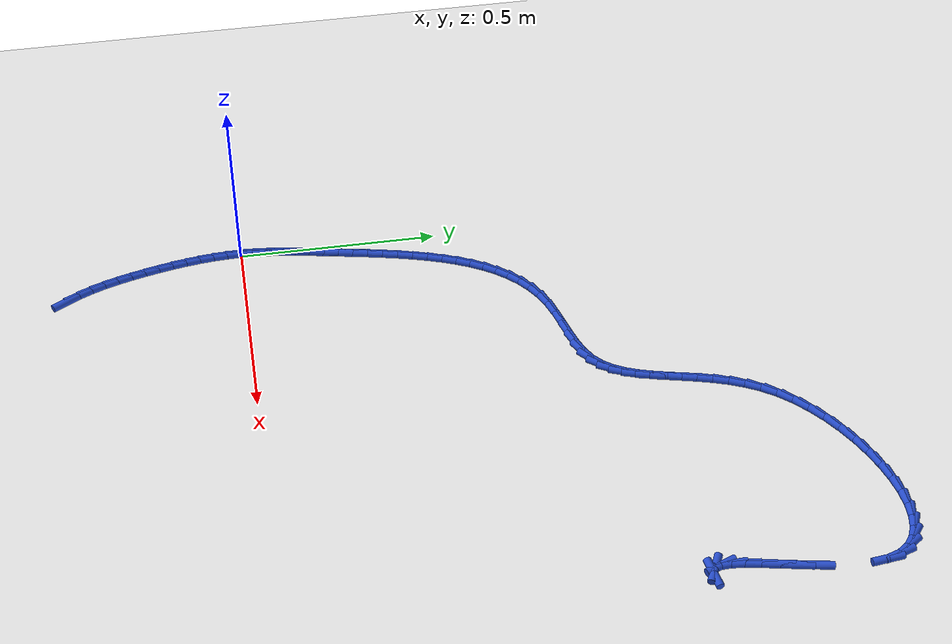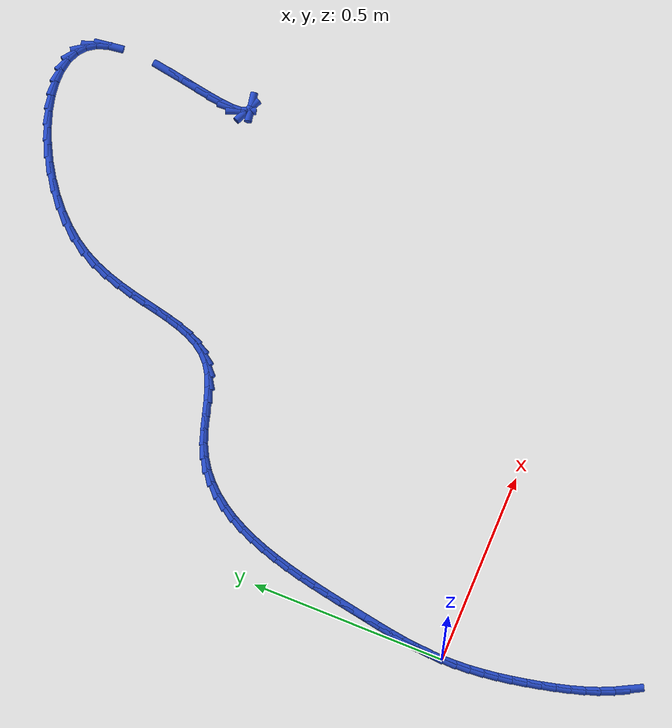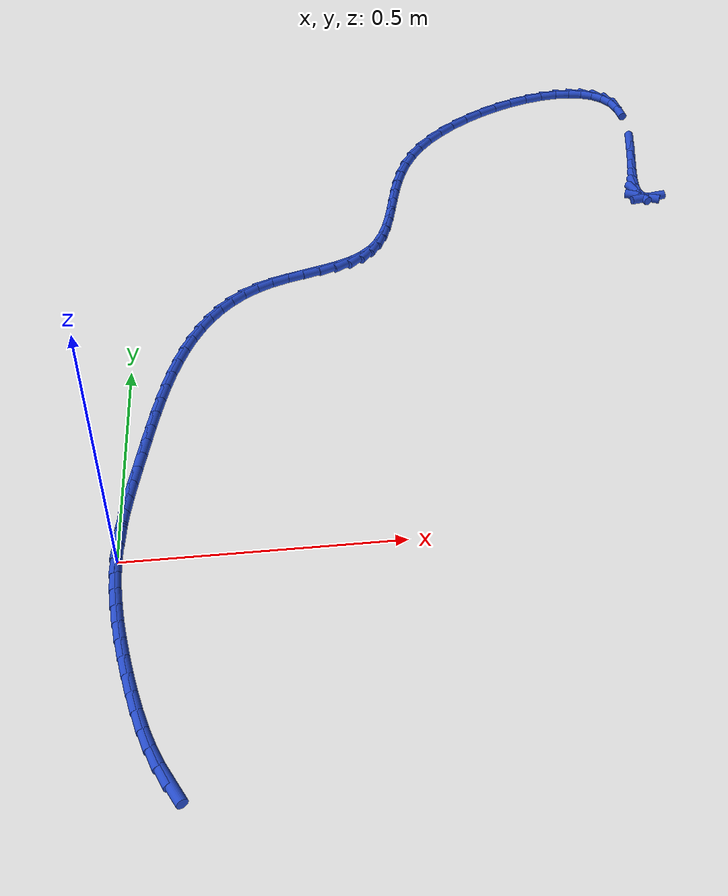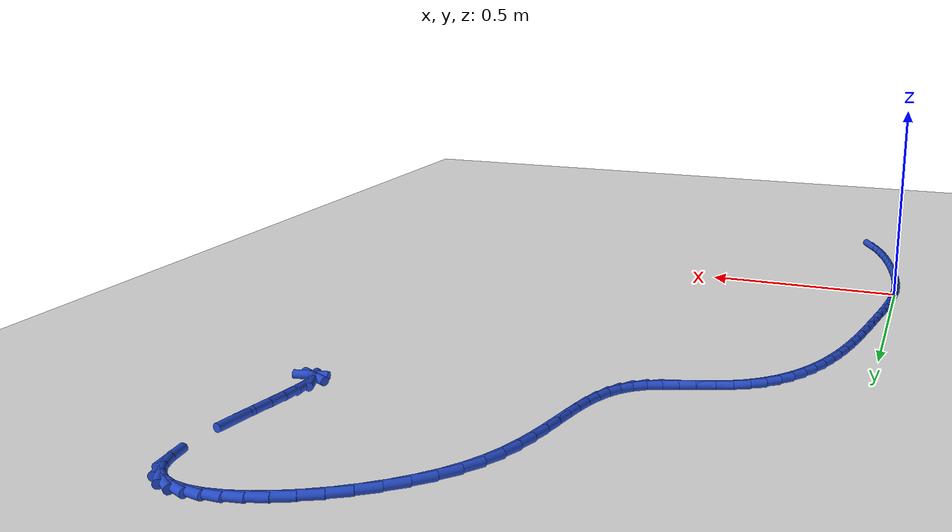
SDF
<sdf version="1.6">
 <world name="default">
  <model name="ground_plane">
   <static>1</static>
   <link name="link">
    <collision name="collision">
     <geometry><plane><normal>0 0 1</normal><size>100 100</size></plane></geometry>
     <surface><friction><ode><mu>100</mu><mu2>50</mu2></ode></friction></surface>
    </collision>
    <visual name="visual">
     <cast_shadows>0</cast_shadows>
     <geometry><plane><normal>0 0 1</normal><size>100 100</size></plane></geometry>
     <material>
      <script><uri>file://media/materials/scripts/gazebo.material</uri><name>Gazebo/WhiteGlow</name></script>
     </material>
    </visual>
   </link>
  </model>
  <model name="line">
   <link name="link_0">
    <pose>-5.204170427930421e-18 -4.85722573273506e-17 0.01 0 1.57 1.5369050462411713</pose>
    <collision name="collision">
     <geometry><cylinder><radius>0.01</radius><length>0.08</length></cylinder></geometry>
    </collision>
    <visual name="visual">
     <material>
      <script><name>Gazebo/Blue</name><uri>file://media/materials/scripts/gazebo.material</uri></script>
     </material>
     <geometry><cylinder><radius>0.01</radius><length>0.08</length></cylinder></geometry>
    </visual>
   </link>
   <link name="link_1">
    <pose>0.001179614929062979 0.03479252576305422 0.01 0 1.57 1.4944790678501276</pose>
    <collision name="collision">
     <geometry><cylinder><radius>0.01</radius><length>0.08</length></cylinder></geometry>
    </collision>
    <visual name="visual">
     <material>
      <script><name>Gazebo/Blue</name><uri>file://media/materials/scripts/gazebo.material</uri></script>
     </material>
     <geometry><cylinder><radius>0.01</radius><length>0.08</length></cylinder></geometry>
    </visual>
   </link>
   <link name="link_2">
    <pose>0.0038353056540135727 0.06952297718088313 0.01 0 1.57 1.4592045873272361</pose>
    <collision name="collision">
     <geometry><cylinder><radius>0.01</radius><length>0.08</length></cylinder></geometry>
    </collision>
    <visual name="visual">
     <material>
      <script><name>Gazebo/Blue</name><uri>file://media/materials/scripts/gazebo.material</uri></script>
     </material>
     <geometry><cylinder><radius>0.01</radius><length>0.08</length></cylinder></geometry>
    </visual>
   </link>
   <link name="link_3">
    <pose>0.007736921789207115 0.10434103318704124 0.01 0 1.57 1.4314305865625976</pose>
    <collision name="collision">
     <geometry><cylinder><radius>0.01</radius><length>0.08</length></cylinder></geometry>
    </collision>
    <visual name="visual">
     <material>
      <script><name>Gazebo/Blue</name><uri>file://media/materials/scripts/gazebo.material</uri></script>
     </material>
     <geometry><cylinder><radius>0.01</radius><length>0.08</length></cylinder></geometry>
    </visual>
   </link>
   <link name="link_4">
    <pose>0.012654312948998951 0.13939637271508315 0.01 0 1.57 1.4112540431788643</pose>
    <collision name="collision">
     <geometry><cylinder><radius>0.01</radius><length>0.08</length></cylinder></geometry>
    </collision>
    <visual name="visual">
     <material>
      <script><name>Gazebo/Blue</name><uri>file://media/materials/scripts/gazebo.material</uri></script>
     </material>
     <geometry><cylinder><radius>0.01</radius><length>0.08</length></cylinder></geometry>
    </visual>
   </link>
   <link name="link_5">
    <pose>0.018357328747744418 0.17483867469856335 0.01 0 1.57 1.3985709128711143</pose>
    <collision name="collision">
     <geometry><cylinder><radius>0.01</radius><length>0.08</length></cylinder></geometry>
    </collision>
    <visual name="visual">
     <material>
      <script><name>Gazebo/Blue</name><uri>file://media/materials/scripts/gazebo.material</uri></script>
     </material>
     <geometry><cylinder><radius>0.01</radius><length>0.08</length></cylinder></geometry>
    </visual>
   </link>
   <link name="link_6">
    <pose>0.02461581879979885 0.21081761807103636 0.01 0 1.57 1.3931243501759252</pose>
    <collision name="collision">
     <geometry><cylinder><radius>0.01</radius><length>0.08</length></cylinder></geometry>
    </collision>
    <visual name="visual">
     <material>
      <script><name>Gazebo/Blue</name><uri>file://media/materials/scripts/gazebo.material</uri></script>
     </material>
     <geometry><cylinder><radius>0.01</radius><length>0.08</length></cylinder></geometry>
    </visual>
   </link>
   <link name="link_7">
    <pose>0.031199632719517586 0.2474828817660568 0.01 0 1.57 1.3925732620197482</pose>
    <collision name="collision">
     <geometry><cylinder><radius>0.01</radius><length>0.08</length></cylinder></geometry>
    </collision>
    <visual name="visual">
     <material>
      <script><name>Gazebo/Blue</name><uri>file://media/materials/scripts/gazebo.material</uri></script>
     </material>
     <geometry><cylinder><radius>0.01</radius><length>0.08</length></cylinder></geometry>
    </visual>
   </link>
   <link name="link_8">
    <pose>0.03794316011798658 0.28491898185479275 0.01 0 1.57 1.388079590155113</pose>
    <collision name="collision">
     <geometry><cylinder><radius>0.01</radius><length>0.08</length></cylinder></geometry>
    </collision>
    <visual name="visual">
     <material>
      <script><name>Gazebo/Blue</name><uri>file://media/materials/scripts/gazebo.material</uri></script>
     </material>
     <geometry><cylinder><radius>0.01</radius><length>0.08</length></cylinder></geometry>
    </visual>
   </link>
   <link name="link_9">
    <pose>0.0449654561309157 0.3229230216202673 0.01 0 1.57 1.3774066742535753</pose>
    <collision name="collision">
     <geometry><cylinder><radius>0.01</radius><length>0.08</length></cylinder></geometry>
    </collision>
    <visual name="visual">
     <material>
      <script><name>Gazebo/Blue</name><uri>file://media/materials/scripts/gazebo.material</uri></script>
     </material>
     <geometry><cylinder><radius>0.01</radius><length>0.08</length></cylinder></geometry>
    </visual>
   </link>
   <link name="link_10">
    <pose>0.052464035154047295 0.36121288788712996 0.01 0 1.57 1.3605367504029735</pose>
    <collision name="collision">
     <geometry><cylinder><radius>0.01</radius><length>0.08</length></cylinder></geometry>
    </collision>
    <visual name="visual">
     <material>
      <script><name>Gazebo/Blue</name><uri>file://media/materials/scripts/gazebo.material</uri></script>
     </material>
     <geometry><cylinder><radius>0.01</radius><length>0.08</length></cylinder></geometry>
    </visual>
   </link>
   <link name="link_11">
    <pose>0.06063641404318535 0.3995064649962271 0.01 0 1.57 1.3372407531217283</pose>
    <collision name="collision">
     <geometry><cylinder><radius>0.01</radius><length>0.08</length></cylinder></geometry>
    </collision>
    <visual name="visual">
     <material>
      <script><name>Gazebo/Blue</name><uri>file://media/materials/scripts/gazebo.material</uri></script>
     </material>
     <geometry><cylinder><radius>0.01</radius><length>0.08</length></cylinder></geometry>
    </visual>
   </link>
   <link name="link_12">
    <pose>0.06968010965413389 0.43752163728840493 0.01 0 1.57 1.3070901362691616</pose>
    <collision name="collision">
     <geometry><cylinder><radius>0.01</radius><length>0.08</length></cylinder></geometry>
    </collision>
    <visual name="visual">
     <material>
      <script><name>Gazebo/Blue</name><uri>file://media/materials/scripts/gazebo.material</uri></script>
     </material>
     <geometry><cylinder><radius>0.01</radius><length>0.08</length></cylinder></geometry>
    </visual>
   </link>
   <link name="link_13">
    <pose>0.07979263884269686 0.47497628910450973 0.01 0 1.57 1.2694643203815754</pose>
    <collision name="collision">
     <geometry><cylinder><radius>0.01</radius><length>0.08</length></cylinder></geometry>
    </collision>
    <visual name="visual">
     <material>
      <script><name>Gazebo/Blue</name><uri>file://media/materials/scripts/gazebo.material</uri></script>
     </material>
     <geometry><cylinder><radius>0.01</radius><length>0.08</length></cylinder></geometry>
    </visual>
   </link>
   <link name="link_14">
    <pose>0.09117151846467822 0.5115883047853877 0.01 0 1.57 1.2235620936816765</pose>
    <collision name="collision">
     <geometry><cylinder><radius>0.01</radius><length>0.08</length></cylinder></geometry>
    </collision>
    <visual name="visual">
     <material>
      <script><name>Gazebo/Blue</name><uri>file://media/materials/scripts/gazebo.material</uri></script>
     </material>
     <geometry><cylinder><radius>0.01</radius><length>0.08</length></cylinder></geometry>
    </visual>
   </link>
   <link name="link_15">
    <pose>0.10401426537588201 0.5470755686718852 0.01 0 1.57 1.1684296489621728</pose>
    <collision name="collision">
     <geometry><cylinder><radius>0.01</radius><length>0.08</length></cylinder></geometry>
    </collision>
    <visual name="visual">
     <material>
      <script><name>Gazebo/Blue</name><uri>file://media/materials/scripts/gazebo.material</uri></script>
     </material>
     <geometry><cylinder><radius>0.01</radius><length>0.08</length></cylinder></geometry>
    </visual>
   </link>
   <link name="link_16">
    <pose>0.1185183964321122 0.5811559651048483 0.01 0 1.57 1.1030246761978932</pose>
    <collision name="collision">
     <geometry><cylinder><radius>0.01</radius><length>0.08</length></cylinder></geometry>
    </collision>
    <visual name="visual">
     <material>
      <script><name>Gazebo/Blue</name><uri>file://media/materials/scripts/gazebo.material</uri></script>
     </material>
     <geometry><cylinder><radius>0.01</radius><length>0.08</length></cylinder></geometry>
    </visual>
   </link>
   <link name="link_17">
    <pose>0.1348814284891728 0.6135473784251237 0.01 0 1.57 1.0263437357575256</pose>
    <collision name="collision">
     <geometry><cylinder><radius>0.01</radius><length>0.08</length></cylinder></geometry>
    </collision>
    <visual name="visual">
     <material>
      <script><name>Gazebo/Blue</name><uri>file://media/materials/scripts/gazebo.material</uri></script>
     </material>
     <geometry><cylinder><radius>0.01</radius><length>0.08</length></cylinder></geometry>
    </visual>
   </link>
   <link name="link_18">
    <pose>0.1533008784028677 0.643967692973557 0.01 0 1.57 0.9376433334057122</pose>
    <collision name="collision">
     <geometry><cylinder><radius>0.01</radius><length>0.08</length></cylinder></geometry>
    </collision>
    <visual name="visual">
     <material>
      <script><name>Gazebo/Blue</name><uri>file://media/materials/scripts/gazebo.material</uri></script>
     </material>
     <geometry><cylinder><radius>0.01</radius><length>0.08</length></cylinder></geometry>
    </visual>
   </link>
   <link name="link_19">
    <pose>0.173974263029001 0.6721347930909952 0.01 0 1.57 0.8367702398681535</pose>
    <collision name="collision">
     <geometry><cylinder><radius>0.01</radius><length>0.08</length></cylinder></geometry>
    </collision>
    <visual name="visual">
     <material>
      <script><name>Gazebo/Blue</name><uri>file://media/materials/scripts/gazebo.material</uri></script>
     </material>
     <geometry><cylinder><radius>0.01</radius><length>0.08</length></cylinder></geometry>
    </visual>
   </link>
   <link name="link_20">
    <pose>0.19709909922337657 0.6977665631182838 0.01 0 1.57 0.7245637853239802</pose>
    <collision name="collision">
     <geometry><cylinder><radius>0.01</radius><length>0.08</length></cylinder></geometry>
    </collision>
    <visual name="visual">
     <material>
      <script><name>Gazebo/Blue</name><uri>file://media/materials/scripts/gazebo.material</uri></script>
     </material>
     <geometry><cylinder><radius>0.01</radius><length>0.08</length></cylinder></geometry>
    </visual>
   </link>
   <link name="link_21">
    <pose>0.2228729038417985 0.7205808873962697 0.01 0 1.57 0.6031958058943186</pose>
    <collision name="collision">
     <geometry><cylinder><radius>0.01</radius><length>0.08</length></cylinder></geometry>
    </collision>
    <visual name="visual">
     <material>
      <script><name>Gazebo/Blue</name><uri>file://media/materials/scripts/gazebo.material</uri></script>
     </material>
     <geometry><cylinder><radius>0.01</radius><length>0.08</length></cylinder></geometry>
    </visual>
   </link>
   <link name="link_22">
    <pose>0.25149319374007073 0.7402956502657989 0.01 0 1.57 0.4764705233320054</pose>
    <collision name="collision">
     <geometry><cylinder><radius>0.01</radius><length>0.08</length></cylinder></geometry>
    </collision>
    <visual name="visual">
     <material>
      <script><name>Gazebo/Blue</name><uri>file://media/materials/scripts/gazebo.material</uri></script>
     </material>
     <geometry><cylinder><radius>0.01</radius><length>0.08</length></cylinder></geometry>
    </visual>
   </link>
   <link name="link_23">
    <pose>0.28315084577020794 0.7566352080083728 0.01 0 1.57 0.36785588193311014</pose>
    <collision name="collision">
     <geometry><cylinder><radius>0.01</radius><length>0.08</length></cylinder></geometry>
    </collision>
    <visual name="visual">
     <material>
      <script><name>Gazebo/Blue</name><uri>file://media/materials/scripts/gazebo.material</uri></script>
     </material>
     <geometry><cylinder><radius>0.01</radius><length>0.08</length></cylinder></geometry>
    </visual>
   </link>
   <link name="link_24">
    <pose>0.3174806974591322 0.7698658824868287 0.01 0 1.57 0.3075824316335672</pose>
    <collision name="collision">
     <geometry><cylinder><radius>0.01</radius><length>0.08</length></cylinder></geometry>
    </collision>
    <visual name="visual">
     <material>
      <script><name>Gazebo/Blue</name><uri>file://media/materials/scripts/gazebo.material</uri></script>
     </material>
     <geometry><cylinder><radius>0.01</radius><length>0.08</length></cylinder></geometry>
    </visual>
   </link>
   <link name="link_25">
    <pose>0.3531502772942382 0.7811968213360009 0.01 0 1.57 0.29302371395674015</pose>
    <collision name="collision">
     <geometry><cylinder><radius>0.01</radius><length>0.08</length></cylinder></geometry>
    </collision>
    <visual name="visual">
     <material>
      <script><name>Gazebo/Blue</name><uri>file://media/materials/scripts/gazebo.material</uri></script>
     </material>
     <geometry><cylinder><radius>0.01</radius><length>0.08</length></cylinder></geometry>
    </visual>
   </link>
   <link name="link_26">
    <pose>0.3887302295905153 0.7919316041570427 0.01 0 1.57 0.32408850256056776</pose>
    <collision name="collision">
     <geometry><cylinder><radius>0.01</radius><length>0.08</length></cylinder></geometry>
    </collision>
    <visual name="visual">
     <material>
      <script><name>Gazebo/Blue</name><uri>file://media/materials/scripts/gazebo.material</uri></script>
     </material>
     <geometry><cylinder><radius>0.01</radius><length>0.08</length></cylinder></geometry>
    </visual>
   </link>
   <link name="link_27">
    <pose>0.42279119866295295 0.803373810551108 0.01 0 1.57 0.40812471255408317</pose>
    <collision name="collision">
     <geometry><cylinder><radius>0.01</radius><length>0.08</length></cylinder></geometry>
    </collision>
    <visual name="visual">
     <material>
      <script><name>Gazebo/Blue</name><uri>file://media/materials/scripts/gazebo.material</uri></script>
     </material>
     <geometry><cylinder><radius>0.01</radius><length>0.08</length></cylinder></geometry>
    </visual>
   </link>
   <link name="link_28">
    <pose>0.45390382882654096 0.8168270201193508 0.01 0 1.57 0.5597559717216742</pose>
    <collision name="collision">
     <geometry><cylinder><radius>0.01</radius><length>0.08</length></cylinder></geometry>
    </collision>
    <visual name="visual">
     <material>
      <script><name>Gazebo/Blue</name><uri>file://media/materials/scripts/gazebo.material</uri></script>
     </material>
     <geometry><cylinder><radius>0.01</radius><length>0.08</length></cylinder></geometry>
    </visual>
   </link>
   <link name="link_29">
    <pose>0.4806497685451893 0.8335862837677136 0.01 0 1.57 0.7617756545515256</pose>
    <collision name="collision">
     <geometry><cylinder><radius>0.01</radius><length>0.08</length></cylinder></geometry>
    </collision>
    <visual name="visual">
     <material>
      <script><name>Gazebo/Blue</name><uri>file://media/materials/scripts/gazebo.material</uri></script>
     </material>
     <geometry><cylinder><radius>0.01</radius><length>0.08</length></cylinder></geometry>
    </visual>
   </link>
   <link name="link_30">
    <pose>0.5024014041411227 0.8543337960845812 0.01 0 1.57 0.9504129710283877</pose>
    <collision name="collision">
     <geometry><cylinder><radius>0.01</radius><length>0.08</length></cylinder></geometry>
    </collision>
    <visual name="visual">
     <material>
      <script><name>Gazebo/Blue</name><uri>file://media/materials/scripts/gazebo.material</uri></script>
     </material>
     <geometry><cylinder><radius>0.01</radius><length>0.08</length></cylinder></geometry>
    </visual>
   </link>
   <link name="link_31">
    <pose>0.5198383411708368 0.8787385997550478 0.01 0 1.57 1.104075658613848</pose>
    <collision name="collision">
     <geometry><cylinder><radius>0.01</radius><length>0.08</length></cylinder></geometry>
    </collision>
    <visual name="visual">
     <material>
      <script><name>Gazebo/Blue</name><uri>file://media/materials/scripts/gazebo.material</uri></script>
     </material>
     <geometry><cylinder><radius>0.01</radius><length>0.08</length></cylinder></geometry>
    </visual>
   </link>
   <link name="link_32">
    <pose>0.5337627403474583 0.9063747518742298 0.01 0 1.57 1.2178432131364294</pose>
    <collision name="collision">
     <geometry><cylinder><radius>0.01</radius><length>0.08</length></cylinder></geometry>
    </collision>
    <visual name="visual">
     <material>
      <script><name>Gazebo/Blue</name><uri>file://media/materials/scripts/gazebo.material</uri></script>
     </material>
     <geometry><cylinder><radius>0.01</radius><length>0.08</length></cylinder></geometry>
    </visual>
   </link>
   <link name="link_33">
    <pose>0.5449767623841129 0.9368163095372418 0.01 0 1.57 1.2945155241710844</pose>
    <collision name="collision">
     <geometry><cylinder><radius>0.01</radius><length>0.08</length></cylinder></geometry>
    </collision>
    <visual name="visual">
     <material>
      <script><name>Gazebo/Blue</name><uri>file://media/materials/scripts/gazebo.material</uri></script>
     </material>
     <geometry><cylinder><radius>0.01</radius><length>0.08</length></cylinder></geometry>
    </visual>
   </link>
   <link name="link_34">
    <pose>0.554282567993927 0.9696373298392008 0.01 0 1.57 1.339228729796562</pose>
    <collision name="collision">
     <geometry><cylinder><radius>0.01</radius><length>0.08</length></cylinder></geometry>
    </collision>
    <visual name="visual">
     <material>
      <script><name>Gazebo/Blue</name><uri>file://media/materials/scripts/gazebo.material</uri></script>
     </material>
     <geometry><cylinder><radius>0.01</radius><length>0.08</length></cylinder></geometry>
    </visual>
   </link>
   <link name="link_35">
    <pose>0.5624823178900267 1.0044118698752216 0.01 0 1.57 1.3566280548710765</pose>
    <collision name="collision">
     <geometry><cylinder><radius>0.01</radius><length>0.08</length></cylinder></geometry>
    </collision>
    <visual name="visual">
     <material>
      <script><name>Gazebo/Blue</name><uri>file://media/materials/scripts/gazebo.material</uri></script>
     </material>
     <geometry><cylinder><radius>0.01</radius><length>0.08</length></cylinder></geometry>
    </visual>
   </link>
   <link name="link_36">
    <pose>0.5703781727855383 1.0407139867404205 0.01 0 1.57 1.3500347471364218</pose>
    <collision name="collision">
     <geometry><cylinder><radius>0.01</radius><length>0.08</length></cylinder></geometry>
    </collision>
    <visual name="visual">
     <material>
      <script><name>Gazebo/Blue</name><uri>file://media/materials/scripts/gazebo.material</uri></script>
     </material>
     <geometry><cylinder><radius>0.01</radius><length>0.08</length></cylinder></geometry>
    </visual>
   </link>
   <link name="link_37">
    <pose>0.5787722933935876 1.0781177375299127 0.01 0 1.57 1.3215047693264759</pose>
    <collision name="collision">
     <geometry><cylinder><radius>0.01</radius><length>0.08</length></cylinder></geometry>
    </collision>
    <visual name="visual">
     <material>
      <script><name>Gazebo/Blue</name><uri>file://media/materials/scripts/gazebo.material</uri></script>
     </material>
     <geometry><cylinder><radius>0.01</radius><length>0.08</length></cylinder></geometry>
    </visual>
   </link>
   <link name="link_38">
    <pose>0.5884668404273015 1.1161971793388146 0.01 0 1.57 1.2722130922830535</pose>
    <collision name="collision">
     <geometry><cylinder><radius>0.01</radius><length>0.08</length></cylinder></geometry>
    </collision>
    <visual name="visual">
     <material>
      <script><name>Gazebo/Blue</name><uri>file://media/materials/scripts/gazebo.material</uri></script>
     </material>
     <geometry><cylinder><radius>0.01</radius><length>0.08</length></cylinder></geometry>
    </visual>
   </link>
   <link name="link_39">
    <pose>0.6002639745998056 1.1545263692622418 0.01 0 1.57 1.2029912521550543</pose>
    <collision name="collision">
     <geometry><cylinder><radius>0.01</radius><length>0.08</length></cylinder></geometry>
    </collision>
    <visual name="visual">
     <material>
      <script><name>Gazebo/Blue</name><uri>file://media/materials/scripts/gazebo.material</uri></script>
     </material>
     <geometry><cylinder><radius>0.01</radius><length>0.08</length></cylinder></geometry>
    </visual>
   </link>
   <link name="link_40">
    <pose>0.6149658566242262 1.1926793643953097 0.01 0 1.57 1.1149902028308967</pose>
    <collision name="collision">
     <geometry><cylinder><radius>0.01</radius><length>0.08</length></cylinder></geometry>
    </collision>
    <visual name="visual">
     <material>
      <script><name>Gazebo/Blue</name><uri>file://media/materials/scripts/gazebo.material</uri></script>
     </material>
     <geometry><cylinder><radius>0.01</radius><length>0.08</length></cylinder></geometry>
    </visual>
   </link>
   <link name="link_41">
    <pose>0.6333746472136897 1.2302302218331345 0.01 0 1.57 1.0104270688908756</pose>
    <collision name="collision">
     <geometry><cylinder><radius>0.01</radius><length>0.08</length></cylinder></geometry>
    </collision>
    <visual name="visual">
     <material>
      <script><name>Gazebo/Blue</name><uri>file://media/materials/scripts/gazebo.material</uri></script>
     </material>
     <geometry><cylinder><radius>0.01</radius><length>0.08</length></cylinder></geometry>
    </visual>
   </link>
   <link name="link_42">
    <pose>0.6562914018405819 1.2667530384862449 0.01 0 1.57 0.9004035265437024</pose>
    <collision name="collision">
     <geometry><cylinder><radius>0.01</radius><length>0.08</length></cylinder></geometry>
    </collision>
    <visual name="visual">
     <material>
      <script><name>Gazebo/Blue</name><uri>file://media/materials/scripts/gazebo.material</uri></script>
     </material>
     <geometry><cylinder><radius>0.01</radius><length>0.08</length></cylinder></geometry>
    </visual>
   </link>
   <link name="link_43">
    <pose>0.6841089511659812 1.3018366172374258 0.01 0 1.57 0.8033685839622964</pose>
    <collision name="collision">
     <geometry><cylinder><radius>0.01</radius><length>0.08</length></cylinder></geometry>
    </collision>
    <visual name="visual">
     <material>
      <script><name>Gazebo/Blue</name><uri>file://media/materials/scripts/gazebo.material</uri></script>
     </material>
     <geometry><cylinder><radius>0.01</radius><length>0.08</length></cylinder></geometry>
    </visual>
   </link>
   <link name="link_44">
    <pose>0.7162039436599458 1.3351063681199664 0.01 0 1.57 0.7179146089818566</pose>
    <collision name="collision">
     <geometry><cylinder><radius>0.01</radius><length>0.08</length></cylinder></geometry>
    </collision>
    <visual name="visual">
     <material>
      <script><name>Gazebo/Blue</name><uri>file://media/materials/scripts/gazebo.material</uri></script>
     </material>
     <geometry><cylinder><radius>0.01</radius><length>0.08</length></cylinder></geometry>
    </visual>
   </link>
   <link name="link_45">
    <pose>0.7517975611359362 1.3661933017290904 0.01 0 1.57 0.6401528496057675</pose>
    <collision name="collision">
     <geometry><cylinder><radius>0.01</radius><length>0.08</length></cylinder></geometry>
    </collision>
    <visual name="visual">
     <material>
      <script><name>Gazebo/Blue</name><uri>file://media/materials/scripts/gazebo.material</uri></script>
     </material>
     <geometry><cylinder><radius>0.01</radius><length>0.08</length></cylinder></geometry>
    </visual>
   </link>
   <link name="link_46">
    <pose>0.7901109854074131 1.3947284286600203 0.01 0 1.57 0.5666918426993591</pose>
    <collision name="collision">
     <geometry><cylinder><radius>0.01</radius><length>0.08</length></cylinder></geometry>
    </collision>
    <visual name="visual">
     <material>
      <script><name>Gazebo/Blue</name><uri>file://media/materials/scripts/gazebo.material</uri></script>
     </material>
     <geometry><cylinder><radius>0.01</radius><length>0.08</length></cylinder></geometry>
    </visual>
   </link>
   <link name="link_47">
    <pose>0.8303653982878372 1.4203427595079796 0.01 0 1.57 0.49437754574316994</pose>
    <collision name="collision">
     <geometry><cylinder><radius>0.01</radius><length>0.08</length></cylinder></geometry>
    </collision>
    <visual name="visual">
     <material>
      <script><name>Gazebo/Blue</name><uri>file://media/materials/scripts/gazebo.material</uri></script>
     </material>
     <geometry><cylinder><radius>0.01</radius><length>0.08</length></cylinder></geometry>
    </visual>
   </link>
   <link name="link_48">
    <pose>0.871781981590669 1.4426673048681917 0.01 0 1.57 0.41998138685529285</pose>
    <collision name="collision">
     <geometry><cylinder><radius>0.01</radius><length>0.08</length></cylinder></geometry>
    </collision>
    <visual name="visual">
     <material>
      <script><name>Gazebo/Blue</name><uri>file://media/materials/scripts/gazebo.material</uri></script>
     </material>
     <geometry><cylinder><radius>0.01</radius><length>0.08</length></cylinder></geometry>
    </visual>
   </link>
   <link name="link_49">
    <pose>0.9135819171293686 1.4613330753358784 0.01 0 1.57 0.33982221556580244</pose>
    <collision name="collision">
     <geometry><cylinder><radius>0.01</radius><length>0.08</length></cylinder></geometry>
    </collision>
    <visual name="visual">
     <material>
      <script><name>Gazebo/Blue</name><uri>file://media/materials/scripts/gazebo.material</uri></script>
     </material>
     <geometry><cylinder><radius>0.01</radius><length>0.08</length></cylinder></geometry>
    </visual>
   </link>
   <link name="link_50">
    <pose>0.9549863867173972 1.475971081506264 0.01 0 1.57 0.24927178854312962</pose>
    <collision name="collision">
     <geometry><cylinder><radius>0.01</radius><length>0.08</length></cylinder></geometry>
    </collision>
    <visual name="visual">
     <material>
      <script><name>Gazebo/Blue</name><uri>file://media/materials/scripts/gazebo.material</uri></script>
     </material>
     <geometry><cylinder><radius>0.01</radius><length>0.08</length></cylinder></geometry>
    </visual>
   </link>
   <link name="link_51">
    <pose>0.995216572168215 1.486212333974571 0.01 0 1.57 0.14208534853576427</pose>
    <collision name="collision">
     <geometry><cylinder><radius>0.01</radius><length>0.08</length></cylinder></geometry>
    </collision>
    <visual name="visual">
     <material>
      <script><name>Gazebo/Blue</name><uri>file://media/materials/scripts/gazebo.material</uri></script>
     </material>
     <geometry><cylinder><radius>0.01</radius><length>0.08</length></cylinder></geometry>
    </visual>
   </link>
   <link name="link_52">
    <pose>1.0334936552952834 1.4916878433360234 0.01 0 1.57 0.00958685752569644</pose>
    <collision name="collision">
     <geometry><cylinder><radius>0.01</radius><length>0.08</length></cylinder></geometry>
    </collision>
    <visual name="visual">
     <material>
      <script><name>Gazebo/Blue</name><uri>file://media/materials/scripts/gazebo.material</uri></script>
     </material>
     <geometry><cylinder><radius>0.01</radius><length>0.08</length></cylinder></geometry>
    </visual>
   </link>
   <link name="link_53">
    <pose>1.0690388179120616 1.4920286201858433 0.01 0 1.57 -0.15979453970036117</pose>
    <collision name="collision">
     <geometry><cylinder><radius>0.01</radius><length>0.08</length></cylinder></geometry>
    </collision>
    <visual name="visual">
     <material>
      <script><name>Gazebo/Blue</name><uri>file://media/materials/scripts/gazebo.material</uri></script>
     </material>
     <geometry><cylinder><radius>0.01</radius><length>0.08</length></cylinder></geometry>
    </visual>
   </link>
   <link name="link_54">
    <pose>1.1010732418320113 1.4868656751192542 0.01 0 1.57 -0.3785694357290226</pose>
    <collision name="collision">
     <geometry><cylinder><radius>0.01</radius><length>0.08</length></cylinder></geometry>
    </collision>
    <visual name="visual">
     <material>
      <script><name>Gazebo/Blue</name><uri>file://media/materials/scripts/gazebo.material</uri></script>
     </material>
     <geometry><cylinder><radius>0.01</radius><length>0.08</length></cylinder></geometry>
    </visual>
   </link>
   <link name="link_55">
    <pose>1.1288181088685927 1.4758300187314792 0.01 0 1.57 -0.6510775557322538</pose>
    <collision name="collision">
     <geometry><cylinder><radius>0.01</radius><length>0.08</length></cylinder></geometry>
    </collision>
    <visual name="visual">
     <material>
      <script><name>Gazebo/Blue</name><uri>file://media/materials/scripts/gazebo.material</uri></script>
     </material>
     <geometry><cylinder><radius>0.01</radius><length>0.08</length></cylinder></geometry>
    </visual>
   </link>
   <link name="link_56">
    <pose>1.1514946008352664 1.4585526616177409 0.01 0 1.57 -0.9570518687198416</pose>
    <collision name="collision">
     <geometry><cylinder><radius>0.01</radius><length>0.08</length></cylinder></geometry>
    </collision>
    <visual name="visual">
     <material>
      <script><name>Gazebo/Blue</name><uri>file://media/materials/scripts/gazebo.material</uri></script>
     </material>
     <geometry><cylinder><radius>0.01</radius><length>0.08</length></cylinder></geometry>
    </visual>
   </link>
   <link name="link_57">
    <pose>1.1683238995454932 1.4346646143732629 0.01 0 1.57 -1.2436300506748685</pose>
    <collision name="collision">
     <geometry><cylinder><radius>0.01</radius><length>0.08</length></cylinder></geometry>
    </collision>
    <visual name="visual">
     <material>
      <script><name>Gazebo/Blue</name><uri>file://media/materials/scripts/gazebo.material</uri></script>
     </material>
     <geometry><cylinder><radius>0.01</radius><length>0.08</length></cylinder></geometry>
    </visual>
   </link>
   <link name="link_58">
    <pose>1.1787318026879587 1.4039955618378783 0.01 0 1.57 -1.444637079950514</pose>
    <collision name="collision">
     <geometry><cylinder><radius>0.01</radius><length>0.08</length></cylinder></geometry>
    </collision>
    <visual name="visual">
     <material>
      <script><name>Gazebo/Blue</name><uri>file://media/materials/scripts/gazebo.material</uri></script>
     </material>
     <geometry><cylinder><radius>0.01</radius><length>0.08</length></cylinder></geometry>
    </visual>
   </link>
   <link name="link_62">
    <pose>1.1733041422020754 1.237910113747317 0.01 0 1.57 1.4015541714508555</pose>
    <collision name="collision">
     <geometry><cylinder><radius>0.01</radius><length>0.08</length></cylinder></geometry>
    </collision>
    <visual name="visual">
     <material>
      <script><name>Gazebo/Blue</name><uri>file://media/materials/scripts/gazebo.material</uri></script>
     </material>
     <geometry><cylinder><radius>0.01</radius><length>0.08</length></cylinder></geometry>
    </visual>
   </link>
   <link name="link_63">
    <pose>1.165581281486497 1.1927146099737485 0.01 0 1.57 1.3876967503209767</pose>
    <collision name="collision">
     <geometry><cylinder><radius>0.01</radius><length>0.08</length></cylinder></geometry>
    </collision>
    <visual name="visual">
     <material>
      <script><name>Gazebo/Blue</name><uri>file://media/materials/scripts/gazebo.material</uri></script>
     </material>
     <geometry><cylinder><radius>0.01</radius><length>0.08</length></cylinder></geometry>
    </visual>
   </link>
   <link name="link_64">
    <pose>1.157471858350418 1.1489209755976948 0.01 0 1.57 1.3916630397164247</pose>
    <collision name="collision">
     <geometry><cylinder><radius>0.01</radius><length>0.08</length></cylinder></geometry>
    </collision>
    <visual name="visual">
     <material>
      <script><name>Gazebo/Blue</name><uri>file://media/materials/scripts/gazebo.material</uri></script>
     </material>
     <geometry><cylinder><radius>0.01</radius><length>0.08</length></cylinder></geometry>
    </visual>
   </link>
   <link name="link_65">
    <pose>1.1500557807024114 1.1079649736680994 0.01 0 1.57 1.4181644058250906</pose>
    <collision name="collision">
     <geometry><cylinder><radius>0.01</radius><length>0.08</length></cylinder></geometry>
    </collision>
    <visual name="visual">
     <material>
      <script><name>Gazebo/Blue</name><uri>file://media/materials/scripts/gazebo.material</uri></script>
     </material>
     <geometry><cylinder><radius>0.01</radius><length>0.08</length></cylinder></geometry>
    </visual>
   </link>
   <link name="link_66">
    <pose>1.1444129564510483 1.071282367233905 0.01 0 1.57 1.4809724146458034</pose>
    <collision name="collision">
     <geometry><cylinder><radius>0.01</radius><length>0.08</length></cylinder></geometry>
    </collision>
    <visual name="visual">
     <material>
      <script><name>Gazebo/Blue</name><uri>file://media/materials/scripts/gazebo.material</uri></script>
     </material>
     <geometry><cylinder><radius>0.01</radius><length>0.08</length></cylinder></geometry>
    </visual>
   </link>
   <link name="link_67">
    <pose>1.1416232935048996 1.0403089193440542 0.01 0 1.57 -1.522848338526374</pose>
    <collision name="collision">
     <geometry><cylinder><radius>0.01</radius><length>0.08</length></cylinder></geometry>
    </collision>
    <visual name="visual">
     <material>
      <script><name>Gazebo/Blue</name><uri>file://media/materials/scripts/gazebo.material</uri></script>
     </material>
     <geometry><cylinder><radius>0.01</radius><length>0.08</length></cylinder></geometry>
    </visual>
   </link>
   <link name="link_68">
    <pose>1.142766699772538 1.0164803930474915 0.01 0 1.57 -1.1870575808474761</pose>
    <collision name="collision">
     <geometry><cylinder><radius>0.01</radius><length>0.08</length></cylinder></geometry>
    </collision>
    <visual name="visual">
     <material>
      <script><name>Gazebo/Blue</name><uri>file://media/materials/scripts/gazebo.material</uri></script>
     </material>
     <geometry><cylinder><radius>0.01</radius><length>0.08</length></cylinder></geometry>
    </visual>
   </link>
   <link name="link_69">
    <pose>1.1489230831625346 1.0012325513931586 0.01 0 1.57 -0.42190029770812376</pose>
    <collision name="collision">
     <geometry><cylinder><radius>0.01</radius><length>0.08</length></cylinder></geometry>
    </collision>
    <visual name="visual">
     <material>
      <script><name>Gazebo/Blue</name><uri>file://media/materials/scripts/gazebo.material</uri></script>
     </material>
     <geometry><cylinder><radius>0.01</radius><length>0.08</length></cylinder></geometry>
    </visual>
   </link>
   <link name="link_70">
    <pose>1.1610688202278772 0.9957808917240109 0.01 0 1.57 0.19157201070864585</pose>
    <collision name="collision">
     <geometry><cylinder><radius>0.01</radius><length>0.08</length></cylinder></geometry>
    </collision>
    <visual name="visual">
     <material>
      <script><name>Gazebo/Blue</name><uri>file://media/materials/scripts/gazebo.material</uri></script>
     </material>
     <geometry><cylinder><radius>0.01</radius><length>0.08</length></cylinder></geometry>
    </visual>
   </link>
   <link name="link_237">
    <pose>0.10329748201670645 -0.4505412949982749 0.01 0 1.57 -1.0823431155424985</pose>
    <collision name="collision">
     <geometry><cylinder><radius>0.01</radius><length>0.08</length></cylinder></geometry>
    </collision>
    <visual name="visual">
     <material>
      <script><name>Gazebo/Blue</name><uri>file://media/materials/scripts/gazebo.material</uri></script>
     </material>
     <geometry><cylinder><radius>0.01</radius><length>0.08</length></cylinder></geometry>
    </visual>
   </link>
   <link name="link_238">
    <pose>0.08675132037309803 -0.4194045421445899 0.01 0 1.57 -1.1566492382478881</pose>
    <collision name="collision">
     <geometry><cylinder><radius>0.01</radius><length>0.08</length></cylinder></geometry>
    </collision>
    <visual name="visual">
     <material>
      <script><name>Gazebo/Blue</name><uri>file://media/materials/scripts/gazebo.material</uri></script>
     </material>
     <geometry><cylinder><radius>0.01</radius><length>0.08</length></cylinder></geometry>
    </visual>
   </link>
   <link name="link_239">
    <pose>0.07241700070376396 -0.3867947207010845 0.01 0 1.57 -1.2184130963288402</pose>
    <collision name="collision">
     <geometry><cylinder><radius>0.01</radius><length>0.08</length></cylinder></geometry>
    </collision>
    <visual name="visual">
     <material>
      <script><name>Gazebo/Blue</name><uri>file://media/materials/scripts/gazebo.material</uri></script>
     </material>
     <geometry><cylinder><radius>0.01</radius><length>0.08</length></cylinder></geometry>
    </visual>
   </link>
   <link name="link_240">
    <pose>0.05999223804534219 -0.35300713923477106 0.01 0 1.57 -1.2683554651146522</pose>
    <collision name="collision">
     <geometry><cylinder><radius>0.01</radius><length>0.08</length></cylinder></geometry>
    </collision>
    <visual name="visual">
     <material>
      <script><name>Gazebo/Blue</name><uri>file://media/materials/scripts/gazebo.material</uri></script>
     </material>
     <geometry><cylinder><radius>0.01</radius><length>0.08</length></cylinder></geometry>
    </visual>
   </link>
   <link name="link_241">
    <pose>0.04917474743446966 -0.31833710631265866 0.01 0 1.57 -1.3072678060413956</pose>
    <collision name="collision">
     <geometry><cylinder><radius>0.01</radius><length>0.08</length></cylinder></geometry>
    </collision>
    <visual name="visual">
     <material>
      <script><name>Gazebo/Blue</name><uri>file://media/materials/scripts/gazebo.material</uri></script>
     </material>
     <geometry><cylinder><radius>0.01</radius><length>0.08</length></cylinder></geometry>
    </visual>
   </link>
   <link name="link_242">
    <pose>0.039662243907784334 -0.2830799305017595 0.01 0 1.57 -1.3358356276722616</pose>
    <collision name="collision">
     <geometry><cylinder><radius>0.01</radius><length>0.08</length></cylinder></geometry>
    </collision>
    <visual name="visual">
     <material>
      <script><name>Gazebo/Blue</name><uri>file://media/materials/scripts/gazebo.material</uri></script>
     </material>
     <geometry><cylinder><radius>0.01</radius><length>0.08</length></cylinder></geometry>
    </visual>
   </link>
   <link name="link_243">
    <pose>0.031152445055402617 -0.24753091884861358 0.01 0 1.57 -1.3570011187430346</pose>
    <collision name="collision">
     <geometry><cylinder><radius>0.01</radius><length>0.08</length></cylinder></geometry>
    </collision>
    <visual name="visual">
     <material>
      <script><name>Gazebo/Blue</name><uri>file://media/materials/scripts/gazebo.material</uri></script>
     </material>
     <geometry><cylinder><radius>0.01</radius><length>0.08</length></cylinder></geometry>
    </visual>
   </link>
   <link name="link_244">
    <pose>0.02342450709992621 -0.21193688569086147 0.01 0 1.57 -1.3799565611497708</pose>
    <collision name="collision">
     <geometry><cylinder><radius>0.01</radius><length>0.08</length></cylinder></geometry>
    </collision>
    <visual name="visual">
     <material>
      <script><name>Gazebo/Blue</name><uri>file://media/materials/scripts/gazebo.material</uri></script>
     </material>
     <geometry><cylinder><radius>0.01</radius><length>0.08</length></cylinder></geometry>
    </visual>
   </link>
   <link name="link_245">
    <pose>0.016553061533943907 -0.17636870434384141 0.01 0 1.57 -1.4068870702674265</pose>
    <collision name="collision">
     <geometry><cylinder><radius>0.01</radius><length>0.08</length></cylinder></geometry>
    </collision>
    <visual name="visual">
     <material>
      <script><name>Gazebo/Blue</name><uri>file://media/materials/scripts/gazebo.material</uri></script>
     </material>
     <geometry><cylinder><radius>0.01</radius><length>0.08</length></cylinder></geometry>
    </visual>
   </link>
   <link name="link_246">
    <pose>0.010679730656128742 -0.1408573583855613 0.01 0 1.57 -1.4379547638960077</pose>
    <collision name="collision">
     <geometry><cylinder><radius>0.01</radius><length>0.08</length></cylinder></geometry>
    </collision>
    <visual name="visual">
     <material>
      <script><name>Gazebo/Blue</name><uri>file://media/materials/scripts/gazebo.material</uri></script>
     </material>
     <geometry><cylinder><radius>0.01</radius><length>0.08</length></cylinder></geometry>
    </visual>
   </link>
   <link name="link_247">
    <pose>0.005946136765153745 -0.10543383139402915 0.01 0 1.57 -1.4733222837829196</pose>
    <collision name="collision">
     <geometry><cylinder><radius>0.01</radius><length>0.08</length></cylinder></geometry>
    </collision>
    <visual name="visual">
     <material>
      <script><name>Gazebo/Blue</name><uri>file://media/materials/scripts/gazebo.material</uri></script>
     </material>
     <geometry><cylinder><radius>0.01</radius><length>0.08</length></cylinder></geometry>
    </visual>
   </link>
   <link name="link_248">
    <pose>0.0024939021596919403 -0.07012910694725293 0.01 0 1.57 -1.5131371808365823</pose>
    <collision name="collision">
     <geometry><cylinder><radius>0.01</radius><length>0.08</length></cylinder></geometry>
    </collision>
    <visual name="visual">
     <material>
      <script><name>Gazebo/Blue</name><uri>file://media/materials/scripts/gazebo.material</uri></script>
     </material>
     <geometry><cylinder><radius>0.01</radius><length>0.08</length></cylinder></geometry>
    </visual>
   </link>
   <link name="link_249">
    <pose>0.00046464913841635013 -0.03497416862324064 0.01 0 1.57 -1.5575116134745863</pose>
    <collision name="collision">
     <geometry><cylinder><radius>0.01</radius><length>0.08</length></cylinder></geometry>
    </collision>
    <visual name="visual">
     <material>
      <script><name>Gazebo/Blue</name><uri>file://media/materials/scripts/gazebo.material</uri></script>
     </material>
     <geometry><cylinder><radius>0.01</radius><length>0.08</length></cylinder></geometry>
    </visual>
   </link>
   <link name="link_250">
    <pose>3.469446951953614e-18 -2.42861286636753e-16 0.01 0 1.57 1.535095426836611</pose>
    <collision name="collision">
     <geometry><cylinder><radius>0.01</radius><length>0.08</length></cylinder></geometry>
    </collision>
    <visual name="visual">
     <material>
      <script><name>Gazebo/Blue</name><uri>file://media/materials/scripts/gazebo.material</uri></script>
     </material>
     <geometry><cylinder><radius>0.01</radius><length>0.08</length></cylinder></geometry>
    </visual>
   </link>
   <link name="link_251">
    <pose>0.0012415770431159299 0.034762415344460285 0.01 0 1.57 1.481536620198533</pose>
    <collision name="collision">
     <geometry><cylinder><radius>0.01</radius><length>0.08</length></cylinder></geometry>
    </collision>
    <visual name="visual">
     <material>
      <script><name>Gazebo/Blue</name><uri>file://media/materials/scripts/gazebo.material</uri></script>
     </material>
     <geometry><cylinder><radius>0.01</radius><length>0.08</length></cylinder></geometry>
    </visual>
   </link>
   <link name="link_252">
    <pose>0.004331002566437153 0.06928209383213293 0.01 0 1.57 1.5083649838432458</pose>
    <collision name="collision">
     <geometry><cylinder><radius>0.01</radius><length>0.08</length></cylinder></geometry>
    </collision>
    <visual name="visual">
     <material>
      <script><name>Gazebo/Blue</name><uri>file://media/materials/scripts/gazebo.material</uri></script>
     </material>
     <geometry><cylinder><radius>0.01</radius><length>0.08</length></cylinder></geometry>
    </visual>
   </link>
  </model>
 </world>
</sdf>
